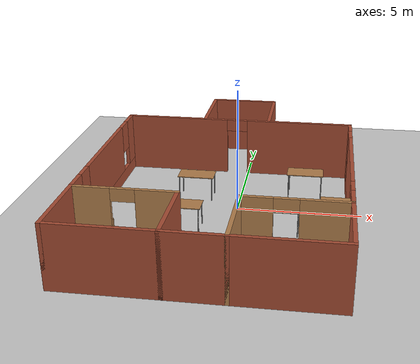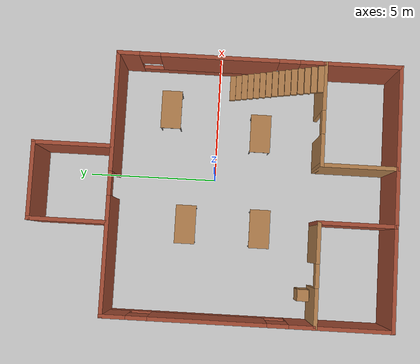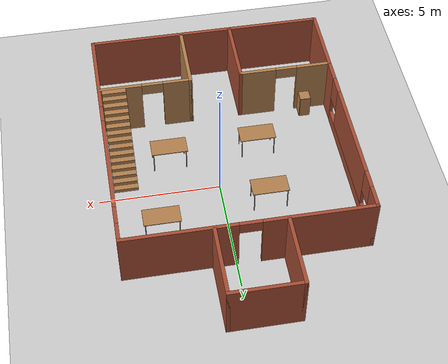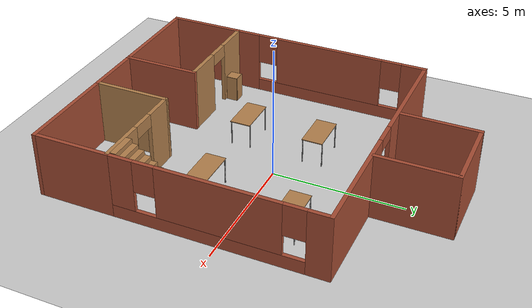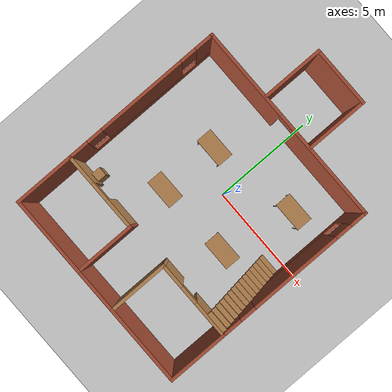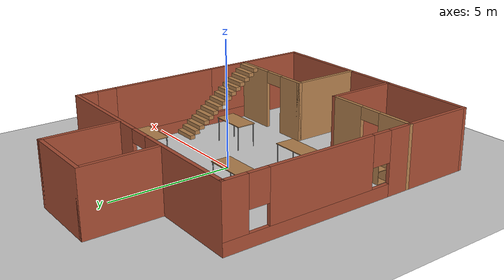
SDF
<sdf version="1.7">
 <world name="default">
  <light name="sun" type="directional">
   <pose>0 0 10 0 -0 0</pose>
   <diffuse>0.8 0.8 0.8 1</diffuse>
   <specular>0.2 0.2 0.2 1</specular>
   <attenuation>
    <range>1000</range>
    <constant>0.9</constant>
    <linear>0.01</linear>
    <quadratic>0.001</quadratic>
   </attenuation>
   <direction>-0.5 0.1 -0.9</direction>
   <spot><inner_angle>0</inner_angle><outer_angle>0</outer_angle><falloff>0</falloff></spot>
  </light>
  <model name="ground_plane">
   <static>1</static>
   <link name="link">
    <collision name="collision">
     <geometry><plane><normal>0 0 1</normal><size>100 100</size></plane></geometry>
     <surface><friction><ode><mu>100</mu><mu2>50</mu2></ode></friction></surface>
    </collision>
    <visual name="visual">
     <cast_shadows>0</cast_shadows>
     <geometry><plane><normal>0 0 1</normal><size>100 100</size></plane></geometry>
     <material>
      <script><uri>file://media/materials/scripts/gazebo.material</uri><name>Gazebo/Grey</name></script>
     </material>
    </visual>
   </link>
  </model>
  <gravity>0 0 -9.8</gravity>
  <magnetic_field>6e-06 2.3e-05 -4.2e-05</magnetic_field>
  <atmosphere type="adiabatic"/>
  <physics type="ode">
   <max_step_size>0.001</max_step_size>
   <real_time_factor>1</real_time_factor>
   <real_time_update_rate>1000</real_time_update_rate>
  </physics>
  <scene><ambient>0.4 0.4 0.4 1</ambient><background>0.7 0.7 0.7 1</background><shadows>1</shadows></scene>
  <audio><device>default</device></audio>
  <spherical_coordinates>
   <surface_model>EARTH_WGS84</surface_model>
   <latitude_deg>0</latitude_deg>
   <longitude_deg>0</longitude_deg>
   <elevation>0</elevation>
   <heading_deg>0</heading_deg>
  </spherical_coordinates>
  <model name="Restaurant">
   <pose>-0.018998 0.00633 0 0 -0 0</pose>
   <link name="Stairs_0">
    <visual name="Stairs_0_Visual_0">
     <pose>3.86151 -0.532842 0.083333 0 -0 0</pose>
     <geometry><box><size>1 0.233333 0.166667</size></box></geometry>
     <material>
      <script><uri>file://media/materials/scripts/gazebo.material</uri><name>Gazebo/Wood</name></script>
      <ambient>1 1 1 1</ambient>
     </material>
     <meta><layer>0</layer></meta>
    </visual>
    <collision name="Stairs_0_Collision_0">
     <geometry><box><size>1 0.233333 0.166667</size></box></geometry>
     <pose>3.86151 -0.532842 0.083333 0 -0 0</pose>
    </collision>
    <visual name="Stairs_0_Visual_1">
     <pose>3.86151 -0.766175 0.25 0 -0 0</pose>
     <geometry><box><size>1 0.233333 0.166667</size></box></geometry>
     <material>
      <script><uri>file://media/materials/scripts/gazebo.material</uri><name>Gazebo/Wood</name></script>
      <ambient>1 1 1 1</ambient>
     </material>
     <meta><layer>0</layer></meta>
    </visual>
    <collision name="Stairs_0_Collision_1">
     <geometry><box><size>1 0.233333 0.166667</size></box></geometry>
     <pose>3.86151 -0.766175 0.25 0 -0 0</pose>
    </collision>
    <visual name="Stairs_0_Visual_2">
     <pose>3.86151 -0.999508 0.416667 0 -0 0</pose>
     <geometry><box><size>1 0.233333 0.166667</size></box></geometry>
     <material>
      <script><uri>file://media/materials/scripts/gazebo.material</uri><name>Gazebo/Wood</name></script>
      <ambient>1 1 1 1</ambient>
     </material>
     <meta><layer>0</layer></meta>
    </visual>
    <collision name="Stairs_0_Collision_2">
     <geometry><box><size>1 0.233333 0.166667</size></box></geometry>
     <pose>3.86151 -0.999508 0.416667 0 -0 0</pose>
    </collision>
    <visual name="Stairs_0_Visual_3">
     <pose>3.86151 -1.23284 0.583333 0 -0 0</pose>
     <geometry><box><size>1 0.233333 0.166667</size></box></geometry>
     <material>
      <script><uri>file://media/materials/scripts/gazebo.material</uri><name>Gazebo/Wood</name></script>
      <ambient>1 1 1 1</ambient>
     </material>
     <meta><layer>0</layer></meta>
    </visual>
    <collision name="Stairs_0_Collision_3">
     <geometry><box><size>1 0.233333 0.166667</size></box></geometry>
     <pose>3.86151 -1.23284 0.583333 0 -0 0</pose>
    </collision>
    <visual name="Stairs_0_Visual_4">
     <pose>3.86151 -1.46618 0.75 0 -0 0</pose>
     <geometry><box><size>1 0.233333 0.166667</size></box></geometry>
     <material>
      <script><uri>file://media/materials/scripts/gazebo.material</uri><name>Gazebo/Wood</name></script>
      <ambient>1 1 1 1</ambient>
     </material>
     <meta><layer>0</layer></meta>
    </visual>
    <collision name="Stairs_0_Collision_4">
     <geometry><box><size>1 0.233333 0.166667</size></box></geometry>
     <pose>3.86151 -1.46618 0.75 0 -0 0</pose>
    </collision>
    <visual name="Stairs_0_Visual_5">
     <pose>3.86151 -1.69951 0.916667 0 -0 0</pose>
     <geometry><box><size>1 0.233333 0.166667</size></box></geometry>
     <material>
      <script><uri>file://media/materials/scripts/gazebo.material</uri><name>Gazebo/Wood</name></script>
      <ambient>1 1 1 1</ambient>
     </material>
     <meta><layer>0</layer></meta>
    </visual>
    <collision name="Stairs_0_Collision_5">
     <geometry><box><size>1 0.233333 0.166667</size></box></geometry>
     <pose>3.86151 -1.69951 0.916667 0 -0 0</pose>
    </collision>
    <visual name="Stairs_0_Visual_6">
     <pose>3.86151 -1.93284 1.08333 0 -0 0</pose>
     <geometry><box><size>1 0.233333 0.166667</size></box></geometry>
     <material>
      <script><uri>file://media/materials/scripts/gazebo.material</uri><name>Gazebo/Wood</name></script>
      <ambient>1 1 1 1</ambient>
     </material>
     <meta><layer>0</layer></meta>
    </visual>
    <collision name="Stairs_0_Collision_6">
     <geometry><box><size>1 0.233333 0.166667</size></box></geometry>
     <pose>3.86151 -1.93284 1.08333 0 -0 0</pose>
    </collision>
    <visual name="Stairs_0_Visual_7">
     <pose>3.86151 -2.16617 1.25 0 -0 0</pose>
     <geometry><box><size>1 0.233333 0.166667</size></box></geometry>
     <material>
      <script><uri>file://media/materials/scripts/gazebo.material</uri><name>Gazebo/Wood</name></script>
      <ambient>1 1 1 1</ambient>
     </material>
     <meta><layer>0</layer></meta>
    </visual>
    <collision name="Stairs_0_Collision_7">
     <geometry><box><size>1 0.233333 0.166667</size></box></geometry>
     <pose>3.86151 -2.16617 1.25 0 -0 0</pose>
    </collision>
    <visual name="Stairs_0_Visual_8">
     <pose>3.86151 -2.39951 1.41667 0 -0 0</pose>
     <geometry><box><size>1 0.233333 0.166667</size></box></geometry>
     <material>
      <script><uri>file://media/materials/scripts/gazebo.material</uri><name>Gazebo/Wood</name></script>
      <ambient>1 1 1 1</ambient>
     </material>
     <meta><layer>0</layer></meta>
    </visual>
    <collision name="Stairs_0_Collision_8">
     <geometry><box><size>1 0.233333 0.166667</size></box></geometry>
     <pose>3.86151 -2.39951 1.41667 0 -0 0</pose>
    </collision>
    <visual name="Stairs_0_Visual_9">
     <pose>3.86151 -2.63284 1.58333 0 -0 0</pose>
     <geometry><box><size>1 0.233333 0.166667</size></box></geometry>
     <material>
      <script><uri>file://media/materials/scripts/gazebo.material</uri><name>Gazebo/Wood</name></script>
      <ambient>1 1 1 1</ambient>
     </material>
     <meta><layer>0</layer></meta>
    </visual>
    <collision name="Stairs_0_Collision_9">
     <geometry><box><size>1 0.233333 0.166667</size></box></geometry>
     <pose>3.86151 -2.63284 1.58333 0 -0 0</pose>
    </collision>
    <visual name="Stairs_0_Visual_10">
     <pose>3.86151 -2.86618 1.75 0 -0 0</pose>
     <geometry><box><size>1 0.233333 0.166667</size></box></geometry>
     <material>
      <script><uri>file://media/materials/scripts/gazebo.material</uri><name>Gazebo/Wood</name></script>
      <ambient>1 1 1 1</ambient>
     </material>
     <meta><layer>0</layer></meta>
    </visual>
    <collision name="Stairs_0_Collision_10">
     <geometry><box><size>1 0.233333 0.166667</size></box></geometry>
     <pose>3.86151 -2.86618 1.75 0 -0 0</pose>
    </collision>
    <visual name="Stairs_0_Visual_11">
     <pose>3.86151 -3.09951 1.91667 0 -0 0</pose>
     <geometry><box><size>1 0.233333 0.166667</size></box></geometry>
     <material>
      <script><uri>file://media/materials/scripts/gazebo.material</uri><name>Gazebo/Wood</name></script>
      <ambient>1 1 1 1</ambient>
     </material>
     <meta><layer>0</layer></meta>
    </visual>
    <collision name="Stairs_0_Collision_11">
     <geometry><box><size>1 0.233333 0.166667</size></box></geometry>
     <pose>3.86151 -3.09951 1.91667 0 -0 0</pose>
    </collision>
    <visual name="Stairs_0_Visual_12">
     <pose>3.86151 -3.33284 2.08333 0 -0 0</pose>
     <geometry><box><size>1 0.233333 0.166667</size></box></geometry>
     <material>
      <script><uri>file://media/materials/scripts/gazebo.material</uri><name>Gazebo/Wood</name></script>
      <ambient>1 1 1 1</ambient>
     </material>
     <meta><layer>0</layer></meta>
    </visual>
    <collision name="Stairs_0_Collision_12">
     <geometry><box><size>1 0.233333 0.166667</size></box></geometry>
     <pose>3.86151 -3.33284 2.08333 0 -0 0</pose>
    </collision>
    <visual name="Stairs_0_Visual_13">
     <pose>3.86151 -3.56617 2.25 0 -0 0</pose>
     <geometry><box><size>1 0.233333 0.166667</size></box></geometry>
     <material>
      <script><uri>file://media/materials/scripts/gazebo.material</uri><name>Gazebo/Wood</name></script>
      <ambient>1 1 1 1</ambient>
     </material>
     <meta><layer>0</layer></meta>
    </visual>
    <collision name="Stairs_0_Collision_13">
     <geometry><box><size>1 0.233333 0.166667</size></box></geometry>
     <pose>3.86151 -3.56617 2.25 0 -0 0</pose>
    </collision>
    <visual name="Stairs_0_Visual_14">
     <pose>3.86151 -3.79951 2.41667 0 -0 0</pose>
     <geometry><box><size>1 0.233333 0.166667</size></box></geometry>
     <material>
      <script><uri>file://media/materials/scripts/gazebo.material</uri><name>Gazebo/Wood</name></script>
      <ambient>1 1 1 1</ambient>
     </material>
     <meta><layer>0</layer></meta>
    </visual>
    <collision name="Stairs_0_Collision_14">
     <geometry><box><size>1 0.233333 0.166667</size></box></geometry>
     <pose>3.86151 -3.79951 2.41667 0 -0 0</pose>
    </collision>
   </link>
   <link name="Wall_13">
    <collision name="Wall_13_Collision">
     <geometry><box><size>3 0.15 2.5</size></box></geometry>
     <pose>0 0 1.25 0 -0 0</pose>
    </collision>
    <visual name="Wall_13_Visual">
     <pose>0 0 1.25 0 -0 0</pose>
     <geometry><box><size>3 0.15 2.5</size></box></geometry>
     <material>
      <script><uri>file://media/materials/scripts/gazebo.material</uri><name>Gazebo/Bricks</name></script>
      <ambient>1 1 1 1</ambient>
     </material>
     <meta><layer>0</layer></meta>
    </visual>
    <pose>-1.95668 5.39616 0 0 -0 1.5708</pose>
   </link>
   <link name="Wall_14">
    <collision name="Wall_14_Collision">
     <geometry><box><size>3 0.15 2.5</size></box></geometry>
     <pose>0 0 1.25 0 -0 0</pose>
    </collision>
    <visual name="Wall_14_Visual">
     <pose>0 0 1.25 0 -0 0</pose>
     <geometry><box><size>3 0.15 2.5</size></box></geometry>
     <material>
      <script><uri>file://media/materials/scripts/gazebo.material</uri><name>Gazebo/Bricks</name></script>
      <ambient>1 1 1 1</ambient>
     </material>
     <meta><layer>0</layer></meta>
    </visual>
    <pose>-0.531677 6.82116 0 0 -0 0</pose>
   </link>
   <link name="Wall_15">
    <collision name="Wall_15_Collision">
     <geometry><box><size>3 0.15 2.5</size></box></geometry>
     <pose>0 0 1.25 0 -0 0</pose>
    </collision>
    <visual name="Wall_15_Visual">
     <pose>0 0 1.25 0 -0 0</pose>
     <geometry><box><size>3 0.15 2.5</size></box></geometry>
     <material>
      <script><uri>file://media/materials/scripts/gazebo.material</uri><name>Gazebo/Bricks</name></script>
      <ambient>1 1 1 1</ambient>
     </material>
     <meta><layer>0</layer></meta>
    </visual>
    <pose>0.893323 5.39616 0 0 -0 -1.5708</pose>
   </link>
   <link name="Wall_17">
    <collision name="Wall_17_Collision">
     <geometry><box><size>3 0.15 2.5</size></box></geometry>
     <pose>0 0 1.25 0 -0 0</pose>
    </collision>
    <visual name="Wall_17_Visual">
     <pose>0 0 1.25 0 -0 0</pose>
     <geometry><box><size>3 0.15 2.5</size></box></geometry>
     <material>
      <script><uri>file://media/materials/scripts/gazebo.material</uri><name>Gazebo/Bricks</name></script>
      <ambient>1 1 1 1</ambient>
     </material>
     <meta><layer>0</layer></meta>
    </visual>
    <pose>-5.38246 -5.39616 0 0 -0 -1.5708</pose>
   </link>
   <link name="Wall_18">
    <collision name="Wall_18_Collision">
     <geometry><box><size>4 0.15 2.5</size></box></geometry>
     <pose>0 0 1.25 0 -0 0</pose>
    </collision>
    <visual name="Wall_18_Visual">
     <pose>0 0 1.25 0 -0 0</pose>
     <geometry><box><size>4 0.15 2.5</size></box></geometry>
     <material>
      <script><uri>file://media/materials/scripts/gazebo.material</uri><name>Gazebo/Bricks</name></script>
      <ambient>1 1 1 1</ambient>
     </material>
     <meta><layer>0</layer></meta>
    </visual>
    <pose>-3.45747 -6.82116 0 0 -0 0</pose>
   </link>
   <link name="Wall_19">
    <collision name="Wall_19_Collision">
     <geometry><box><size>3 0.15 2.5</size></box></geometry>
     <pose>0 0 1.25 0 -0 0</pose>
    </collision>
    <visual name="Wall_19_Visual">
     <pose>0 0 1.25 0 -0 0</pose>
     <geometry><box><size>3 0.15 2.5</size></box></geometry>
     <material>
      <script><uri>file://media/materials/scripts/gazebo.material</uri><name>Gazebo/Bricks</name></script>
      <ambient>1 1 1 1</ambient>
     </material>
     <meta><layer>0</layer></meta>
    </visual>
    <pose>-1.53246 -5.39616 0 0 -0 1.5708</pose>
   </link>
   <link name="Wall_25">
    <collision name="Wall_25_Collision">
     <geometry><box><size>3 0.15 2.5</size></box></geometry>
     <pose>0 0 1.25 0 -0 0</pose>
    </collision>
    <visual name="Wall_25_Visual">
     <pose>0 0 1.25 0 -0 0</pose>
     <geometry><box><size>3 0.15 2.5</size></box></geometry>
     <material>
      <script><uri>file://media/materials/scripts/gazebo.material</uri><name>Gazebo/Bricks</name></script>
      <ambient>1 1 1 1</ambient>
     </material>
     <meta><layer>0</layer></meta>
    </visual>
    <pose>4.46753 -5.39616 0 0 -0 -1.5708</pose>
   </link>
   <link name="Wall_26">
    <collision name="Wall_26_Collision">
     <geometry><box><size>4 0.15 2.5</size></box></geometry>
     <pose>0 0 1.25 0 -0 0</pose>
    </collision>
    <visual name="Wall_26_Visual">
     <pose>0 0 1.25 0 -0 0</pose>
     <geometry><box><size>4 0.15 2.5</size></box></geometry>
     <material>
      <script><uri>file://media/materials/scripts/gazebo.material</uri><name>Gazebo/Bricks</name></script>
      <ambient>1 1 1 1</ambient>
     </material>
     <meta><layer>0</layer></meta>
    </visual>
    <pose>2.54253 -6.82116 0 0 -0 3.14159</pose>
   </link>
   <link name="Wall_27">
    <collision name="Wall_27_Collision">
     <geometry><box><size>3 0.15 2.5</size></box></geometry>
     <pose>0 0 1.25 0 -0 0</pose>
    </collision>
    <visual name="Wall_27_Visual">
     <pose>0 0 1.25 0 -0 0</pose>
     <geometry><box><size>3 0.15 2.5</size></box></geometry>
     <material>
      <script><uri>file://media/materials/scripts/gazebo.material</uri><name>Gazebo/Wood</name></script>
      <ambient>1 1 1 1</ambient>
     </material>
     <meta><layer>0</layer></meta>
    </visual>
    <pose>0.617535 -5.39616 0 0 -0 1.5708</pose>
   </link>
   <link name="Wall_32">
    <pose>-3.45747 -3.97116 0 0 -0 3.14159</pose>
    <visual name="Wall_32_Visual_0">
     <pose>-1.20352 0 1.25 0 -0 0</pose>
     <geometry><box><size>1.59296 0.15 2.5</size></box></geometry>
     <material>
      <script><uri>file://media/materials/scripts/gazebo.material</uri><name>Gazebo/Wood</name></script>
      <ambient>1 1 1 1</ambient>
     </material>
     <meta><layer>0</layer></meta>
    </visual>
    <collision name="Wall_32_Collision_0">
     <geometry><box><size>1.59296 0.15 2.5</size></box></geometry>
     <pose>-1.20352 0 1.25 0 -0 0</pose>
    </collision>
    <visual name="Wall_32_Visual_1">
     <pose>1.24648 0 1.25 0 -0 0</pose>
     <geometry><box><size>1.50704 0.15 2.5</size></box></geometry>
     <material>
      <script><uri>file://media/materials/scripts/gazebo.material</uri><name>Gazebo/Wood</name></script>
      <ambient>1 1 1 1</ambient>
     </material>
     <meta><layer>0</layer></meta>
    </visual>
    <collision name="Wall_32_Collision_1">
     <geometry><box><size>1.50704 0.15 2.5</size></box></geometry>
     <pose>1.24648 0 1.25 0 -0 0</pose>
    </collision>
    <visual name="Wall_32_Visual_2">
     <pose>0.04296 0 2.25 0 -0 0</pose>
     <geometry><box><size>0.9 0.15 0.5</size></box></geometry>
     <material>
      <script><uri>file://media/materials/scripts/gazebo.material</uri><name>Gazebo/Wood</name></script>
      <ambient>1 1 1 1</ambient>
     </material>
     <meta><layer>0</layer></meta>
    </visual>
    <collision name="Wall_32_Collision_2">
     <geometry><box><size>0.9 0.15 0.5</size></box></geometry>
     <pose>0.04296 0 2.25 0 -0 0</pose>
    </collision>
   </link>
   <link name="Wall_34">
    <pose>2.54253 -3.97116 0 0 -0 0</pose>
    <visual name="Wall_34_Visual_0">
     <pose>-1.37963 0 1.25 0 -0 0</pose>
     <geometry><box><size>1.24074 0.15 2.5</size></box></geometry>
     <material>
      <script><uri>file://media/materials/scripts/gazebo.material</uri><name>Gazebo/Wood</name></script>
      <ambient>1 1 1 1</ambient>
     </material>
     <meta><layer>0</layer></meta>
    </visual>
    <collision name="Wall_34_Collision_0">
     <geometry><box><size>1.24074 0.15 2.5</size></box></geometry>
     <pose>-1.37963 0 1.25 0 -0 0</pose>
    </collision>
    <visual name="Wall_34_Visual_1">
     <pose>1.07037 0 1.25 0 -0 0</pose>
     <geometry><box><size>1.85926 0.15 2.5</size></box></geometry>
     <material>
      <script><uri>file://media/materials/scripts/gazebo.material</uri><name>Gazebo/Wood</name></script>
      <ambient>1 1 1 1</ambient>
     </material>
     <meta><layer>0</layer></meta>
    </visual>
    <collision name="Wall_34_Collision_1">
     <geometry><box><size>1.85926 0.15 2.5</size></box></geometry>
     <pose>1.07037 0 1.25 0 -0 0</pose>
    </collision>
    <visual name="Wall_34_Visual_2">
     <pose>-0.309262 0 2.25 0 -0 0</pose>
     <geometry><box><size>0.9 0.15 0.5</size></box></geometry>
     <material>
      <script><uri>file://media/materials/scripts/gazebo.material</uri><name>Gazebo/Wood</name></script>
      <ambient>1 1 1 1</ambient>
     </material>
     <meta><layer>0</layer></meta>
    </visual>
    <collision name="Wall_34_Collision_2">
     <geometry><box><size>0.9 0.15 0.5</size></box></geometry>
     <pose>-0.309262 0 2.25 0 -0 0</pose>
    </collision>
   </link>
   <link name="Wall_36">
    <collision name="Wall_36_Collision">
     <geometry><box><size>2.3 0.15 2.5</size></box></geometry>
     <pose>0 0 1.25 0 -0 0</pose>
    </collision>
    <visual name="Wall_36_Visual">
     <pose>0 0 1.25 0 -0 0</pose>
     <geometry><box><size>2.3 0.15 2.5</size></box></geometry>
     <material>
      <script><uri>file://media/materials/scripts/gazebo.material</uri><name>Gazebo/Bricks</name></script>
      <ambient>1 1 1 1</ambient>
     </material>
     <meta><layer>0</layer></meta>
    </visual>
    <pose>-0.457465 -6.82116 0 0 -0 0</pose>
   </link>
   <link name="Wall_6">
    <pose>-0.457465 3.87884 0 0 -0 0</pose>
    <visual name="Wall_6_Visual_0">
     <pose>-2.7455 0 1.25 0 -0 0</pose>
     <geometry><box><size>4.50901 0.15 2.5</size></box></geometry>
     <material>
      <script><uri>file://media/materials/scripts/gazebo.material</uri><name>Gazebo/Bricks</name></script>
      <ambient>1 1 1 1</ambient>
     </material>
     <meta><layer>0</layer></meta>
    </visual>
    <collision name="Wall_6_Collision_0">
     <geometry><box><size>4.50901 0.15 2.5</size></box></geometry>
     <pose>-2.7455 0 1.25 0 -0 0</pose>
    </collision>
    <visual name="Wall_6_Visual_1">
     <pose>2.70451 0 1.25 0 -0 0</pose>
     <geometry><box><size>4.59099 0.15 2.5</size></box></geometry>
     <material>
      <script><uri>file://media/materials/scripts/gazebo.material</uri><name>Gazebo/Bricks</name></script>
      <ambient>1 1 1 1</ambient>
     </material>
     <meta><layer>0</layer></meta>
    </visual>
    <collision name="Wall_6_Collision_1">
     <geometry><box><size>4.59099 0.15 2.5</size></box></geometry>
     <pose>2.70451 0 1.25 0 -0 0</pose>
    </collision>
    <visual name="Wall_6_Visual_2">
     <pose>-0.040989 0 2.25 0 -0 0</pose>
     <geometry><box><size>0.9 0.15 0.5</size></box></geometry>
     <material>
      <script><uri>file://media/materials/scripts/gazebo.material</uri><name>Gazebo/Bricks</name></script>
      <ambient>1 1 1 1</ambient>
     </material>
     <meta><layer>0</layer></meta>
    </visual>
    <collision name="Wall_6_Collision_2">
     <geometry><box><size>0.9 0.15 0.5</size></box></geometry>
     <pose>-0.040989 0 2.25 0 -0 0</pose>
    </collision>
   </link>
   <link name="Wall_7">
    <pose>4.46753 -0.046164 0 0 -0 -1.5708</pose>
    <visual name="Wall_7_Visual_0">
     <pose>-3.56684 0 1.25 0 -0 0</pose>
     <geometry><box><size>0.866315 0.15 2.5</size></box></geometry>
     <material>
      <script><uri>file://media/materials/scripts/gazebo.material</uri><name>Gazebo/Bricks</name></script>
      <ambient>1 1 1 1</ambient>
     </material>
     <meta><layer>0</layer></meta>
    </visual>
    <collision name="Wall_7_Collision_0">
     <geometry><box><size>0.866315 0.15 2.5</size></box></geometry>
     <pose>-3.56684 0 1.25 0 -0 0</pose>
    </collision>
    <visual name="Wall_7_Visual_1">
     <pose>0.433158 0 0.25 0 -0 0</pose>
     <geometry><box><size>7.13368 0.15 0.5</size></box></geometry>
     <material>
      <script><uri>file://media/materials/scripts/gazebo.material</uri><name>Gazebo/Bricks</name></script>
      <ambient>1 1 1 1</ambient>
     </material>
     <meta><layer>0</layer></meta>
    </visual>
    <collision name="Wall_7_Collision_1">
     <geometry><box><size>7.13368 0.15 0.5</size></box></geometry>
     <pose>0.433158 0 0.25 0 -0 0</pose>
    </collision>
    <visual name="Wall_7_Visual_2">
     <pose>-0.08763 0 1.5 0 -0 0</pose>
     <geometry><box><size>4.49211 0.15 2</size></box></geometry>
     <material>
      <script><uri>file://media/materials/scripts/gazebo.material</uri><name>Gazebo/Bricks</name></script>
      <ambient>1 1 1 1</ambient>
     </material>
     <meta><layer>0</layer></meta>
    </visual>
    <collision name="Wall_7_Collision_2">
     <geometry><box><size>4.49211 0.15 2</size></box></geometry>
     <pose>-0.08763 0 1.5 0 -0 0</pose>
    </collision>
    <visual name="Wall_7_Visual_3">
     <pose>3.47921 0 1.5 0 -0 0</pose>
     <geometry><box><size>1.04157 0.15 2</size></box></geometry>
     <material>
      <script><uri>file://media/materials/scripts/gazebo.material</uri><name>Gazebo/Bricks</name></script>
      <ambient>1 1 1 1</ambient>
     </material>
     <meta><layer>0</layer></meta>
    </visual>
    <collision name="Wall_7_Collision_3">
     <geometry><box><size>1.04157 0.15 2</size></box></geometry>
     <pose>3.47921 0 1.5 0 -0 0</pose>
    </collision>
    <visual name="Wall_7_Visual_4">
     <pose>-2.73368 0 1.9 0 -0 0</pose>
     <geometry><box><size>0.8 0.15 1.2</size></box></geometry>
     <material>
      <script><uri>file://media/materials/scripts/gazebo.material</uri><name>Gazebo/Bricks</name></script>
      <ambient>1 1 1 1</ambient>
     </material>
     <meta><layer>0</layer></meta>
    </visual>
    <collision name="Wall_7_Collision_4">
     <geometry><box><size>0.8 0.15 1.2</size></box></geometry>
     <pose>-2.73368 0 1.9 0 -0 0</pose>
    </collision>
    <visual name="Wall_7_Visual_5">
     <pose>2.55843 0 1.9 0 -0 0</pose>
     <geometry><box><size>0.8 0.15 1.2</size></box></geometry>
     <material>
      <script><uri>file://media/materials/scripts/gazebo.material</uri><name>Gazebo/Bricks</name></script>
      <ambient>1 1 1 1</ambient>
     </material>
     <meta><layer>0</layer></meta>
    </visual>
    <collision name="Wall_7_Collision_5">
     <geometry><box><size>0.8 0.15 1.2</size></box></geometry>
     <pose>2.55843 0 1.9 0 -0 0</pose>
    </collision>
   </link>
   <link name="Wall_9">
    <pose>-5.38246 -0.046164 0 0 -0 1.5708</pose>
    <visual name="Wall_9_Visual_0">
     <pose>-3.47921 0 1.25 0 -0 0</pose>
     <geometry><box><size>1.04157 0.15 2.5</size></box></geometry>
     <material>
      <script><uri>file://media/materials/scripts/gazebo.material</uri><name>Gazebo/Bricks</name></script>
      <ambient>1 1 1 1</ambient>
     </material>
     <meta><layer>0</layer></meta>
    </visual>
    <collision name="Wall_9_Collision_0">
     <geometry><box><size>1.04157 0.15 2.5</size></box></geometry>
     <pose>-3.47921 0 1.25 0 -0 0</pose>
    </collision>
    <visual name="Wall_9_Visual_1">
     <pose>0.520788 0 0.25 0 -0 0</pose>
     <geometry><box><size>6.95843 0.15 0.5</size></box></geometry>
     <material>
      <script><uri>file://media/materials/scripts/gazebo.material</uri><name>Gazebo/Bricks</name></script>
      <ambient>1 1 1 1</ambient>
     </material>
     <meta><layer>0</layer></meta>
    </visual>
    <collision name="Wall_9_Collision_1">
     <geometry><box><size>6.95843 0.15 0.5</size></box></geometry>
     <pose>0.520788 0 0.25 0 -0 0</pose>
    </collision>
    <visual name="Wall_9_Visual_2">
     <pose>0.026449 0 1.5 0 -0 0</pose>
     <geometry><box><size>4.36975 0.15 2</size></box></geometry>
     <material>
      <script><uri>file://media/materials/scripts/gazebo.material</uri><name>Gazebo/Bricks</name></script>
      <ambient>1 1 1 1</ambient>
     </material>
     <meta><layer>0</layer></meta>
    </visual>
    <collision name="Wall_9_Collision_2">
     <geometry><box><size>4.36975 0.15 2</size></box></geometry>
     <pose>0.026449 0 1.5 0 -0 0</pose>
    </collision>
    <visual name="Wall_9_Visual_3">
     <pose>3.50566 0 1.5 0 -0 0</pose>
     <geometry><box><size>0.988676 0.15 2</size></box></geometry>
     <material>
      <script><uri>file://media/materials/scripts/gazebo.material</uri><name>Gazebo/Bricks</name></script>
      <ambient>1 1 1 1</ambient>
     </material>
     <meta><layer>0</layer></meta>
    </visual>
    <collision name="Wall_9_Collision_3">
     <geometry><box><size>0.988676 0.15 2</size></box></geometry>
     <pose>3.50566 0 1.5 0 -0 0</pose>
    </collision>
    <visual name="Wall_9_Visual_4">
     <pose>-2.55843 0 1.9 0 -0 0</pose>
     <geometry><box><size>0.8 0.15 1.2</size></box></geometry>
     <material>
      <script><uri>file://media/materials/scripts/gazebo.material</uri><name>Gazebo/Bricks</name></script>
      <ambient>1 1 1 1</ambient>
     </material>
     <meta><layer>0</layer></meta>
    </visual>
    <collision name="Wall_9_Collision_4">
     <geometry><box><size>0.8 0.15 1.2</size></box></geometry>
     <pose>-2.55843 0 1.9 0 -0 0</pose>
    </collision>
    <visual name="Wall_9_Visual_5">
     <pose>2.61132 0 1.9 0 -0 0</pose>
     <geometry><box><size>0.8 0.15 1.2</size></box></geometry>
     <material>
      <script><uri>file://media/materials/scripts/gazebo.material</uri><name>Gazebo/Bricks</name></script>
      <ambient>1 1 1 1</ambient>
     </material>
     <meta><layer>0</layer></meta>
    </visual>
    <collision name="Wall_9_Collision_5">
     <geometry><box><size>0.8 0.15 1.2</size></box></geometry>
     <pose>2.61132 0 1.9 0 -0 0</pose>
    </collision>
   </link>
   <static>1</static>
  </model>
  <model name="table">
   <static>1</static>
   <link name="link">
    <collision name="surface">
     <pose>0 0 1 0 -0 0</pose>
     <geometry><box><size>1.5 0.8 0.03</size></box></geometry>
     <surface><friction><ode><mu>0.6</mu><mu2>0.6</mu2></ode></friction></surface>
    </collision>
    <visual name="visual1">
     <pose>0 0 1 0 -0 0</pose>
     <geometry><box><size>1.5 0.8 0.03</size></box></geometry>
     <material>
      <script><uri>file://media/materials/scripts/gazebo.material</uri><name>Gazebo/Wood</name></script>
     </material>
    </visual>
    <collision name="front_left_leg">
     <pose>0.68 0.38 0.5 0 -0 0</pose>
     <geometry><cylinder><radius>0.02</radius><length>1</length></cylinder></geometry>
    </collision>
    <visual name="front_left_leg">
     <pose>0.68 0.38 0.5 0 -0 0</pose>
     <geometry><cylinder><radius>0.02</radius><length>1</length></cylinder></geometry>
     <material>
      <script><uri>file://media/materials/scripts/gazebo.material</uri><name>Gazebo/Grey</name></script>
     </material>
    </visual>
    <collision name="front_right_leg">
     <pose>0.68 -0.38 0.5 0 -0 0</pose>
     <geometry><cylinder><radius>0.02</radius><length>1</length></cylinder></geometry>
    </collision>
    <visual name="front_right_leg">
     <pose>0.68 -0.38 0.5 0 -0 0</pose>
     <geometry><cylinder><radius>0.02</radius><length>1</length></cylinder></geometry>
     <material>
      <script><uri>file://media/materials/scripts/gazebo.material</uri><name>Gazebo/Grey</name></script>
     </material>
    </visual>
    <collision name="back_right_leg">
     <pose>-0.68 -0.38 0.5 0 -0 0</pose>
     <geometry><cylinder><radius>0.02</radius><length>1</length></cylinder></geometry>
    </collision>
    <visual name="back_right_leg">
     <pose>-0.68 -0.38 0.5 0 -0 0</pose>
     <geometry><cylinder><radius>0.02</radius><length>1</length></cylinder></geometry>
     <material>
      <script><uri>file://media/materials/scripts/gazebo.material</uri><name>Gazebo/Grey</name></script>
     </material>
    </visual>
    <collision name="back_left_leg">
     <pose>-0.68 0.38 0.5 0 -0 0</pose>
     <geometry><cylinder><radius>0.02</radius><length>1</length></cylinder></geometry>
    </collision>
    <visual name="back_left_leg">
     <pose>-0.68 0.38 0.5 0 -0 0</pose>
     <geometry><cylinder><radius>0.02</radius><length>1</length></cylinder></geometry>
     <material>
      <script><uri>file://media/materials/scripts/gazebo.material</uri><name>Gazebo/Grey</name></script>
     </material>
    </visual>
   </link>
   <pose>-1.87456 -1.84638 0 0 -0 0</pose>
  </model>
  <model name="table_0">
   <static>1</static>
   <link name="link">
    <collision name="surface">
     <pose>0 0 1 0 -0 0</pose>
     <geometry><box><size>1.5 0.8 0.03</size></box></geometry>
     <surface><friction><ode><mu>0.6</mu><mu2>0.6</mu2></ode></friction></surface>
    </collision>
    <visual name="visual1">
     <pose>0 0 1 0 -0 0</pose>
     <geometry><box><size>1.5 0.8 0.03</size></box></geometry>
     <material>
      <script><uri>file://media/materials/scripts/gazebo.material</uri><name>Gazebo/Wood</name></script>
     </material>
    </visual>
    <collision name="front_left_leg">
     <pose>0.68 0.38 0.5 0 -0 0</pose>
     <geometry><cylinder><radius>0.02</radius><length>1</length></cylinder></geometry>
    </collision>
    <visual name="front_left_leg">
     <pose>0.68 0.38 0.5 0 -0 0</pose>
     <geometry><cylinder><radius>0.02</radius><length>1</length></cylinder></geometry>
     <material>
      <script><uri>file://media/materials/scripts/gazebo.material</uri><name>Gazebo/Grey</name></script>
     </material>
    </visual>
    <collision name="front_right_leg">
     <pose>0.68 -0.38 0.5 0 -0 0</pose>
     <geometry><cylinder><radius>0.02</radius><length>1</length></cylinder></geometry>
    </collision>
    <visual name="front_right_leg">
     <pose>0.68 -0.38 0.5 0 -0 0</pose>
     <geometry><cylinder><radius>0.02</radius><length>1</length></cylinder></geometry>
     <material>
      <script><uri>file://media/materials/scripts/gazebo.material</uri><name>Gazebo/Grey</name></script>
     </material>
    </visual>
    <collision name="back_right_leg">
     <pose>-0.68 -0.38 0.5 0 -0 0</pose>
     <geometry><cylinder><radius>0.02</radius><length>1</length></cylinder></geometry>
    </collision>
    <visual name="back_right_leg">
     <pose>-0.68 -0.38 0.5 0 -0 0</pose>
     <geometry><cylinder><radius>0.02</radius><length>1</length></cylinder></geometry>
     <material>
      <script><uri>file://media/materials/scripts/gazebo.material</uri><name>Gazebo/Grey</name></script>
     </material>
    </visual>
    <collision name="back_left_leg">
     <pose>-0.68 0.38 0.5 0 -0 0</pose>
     <geometry><cylinder><radius>0.02</radius><length>1</length></cylinder></geometry>
    </collision>
    <visual name="back_left_leg">
     <pose>-0.68 0.38 0.5 0 -0 0</pose>
     <geometry><cylinder><radius>0.02</radius><length>1</length></cylinder></geometry>
     <material>
      <script><uri>file://media/materials/scripts/gazebo.material</uri><name>Gazebo/Grey</name></script>
     </material>
    </visual>
   </link>
   <pose>-1.84743 1.05169 0 0 -0 0</pose>
  </model>
  <model name="table_1">
   <static>1</static>
   <link name="link">
    <collision name="surface">
     <pose>0 0 1 0 -0 0</pose>
     <geometry><box><size>1.5 0.8 0.03</size></box></geometry>
     <surface><friction><ode><mu>0.6</mu><mu2>0.6</mu2></ode></friction></surface>
    </collision>
    <visual name="visual1">
     <pose>0 0 1 0 -0 0</pose>
     <geometry><box><size>1.5 0.8 0.03</size></box></geometry>
     <material>
      <script><uri>file://media/materials/scripts/gazebo.material</uri><name>Gazebo/Wood</name></script>
     </material>
    </visual>
    <collision name="front_left_leg">
     <pose>0.68 0.38 0.5 0 -0 0</pose>
     <geometry><cylinder><radius>0.02</radius><length>1</length></cylinder></geometry>
    </collision>
    <visual name="front_left_leg">
     <pose>0.68 0.38 0.5 0 -0 0</pose>
     <geometry><cylinder><radius>0.02</radius><length>1</length></cylinder></geometry>
     <material>
      <script><uri>file://media/materials/scripts/gazebo.material</uri><name>Gazebo/Grey</name></script>
     </material>
    </visual>
    <collision name="front_right_leg">
     <pose>0.68 -0.38 0.5 0 -0 0</pose>
     <geometry><cylinder><radius>0.02</radius><length>1</length></cylinder></geometry>
    </collision>
    <visual name="front_right_leg">
     <pose>0.68 -0.38 0.5 0 -0 0</pose>
     <geometry><cylinder><radius>0.02</radius><length>1</length></cylinder></geometry>
     <material>
      <script><uri>file://media/materials/scripts/gazebo.material</uri><name>Gazebo/Grey</name></script>
     </material>
    </visual>
    <collision name="back_right_leg">
     <pose>-0.68 -0.38 0.5 0 -0 0</pose>
     <geometry><cylinder><radius>0.02</radius><length>1</length></cylinder></geometry>
    </collision>
    <visual name="back_right_leg">
     <pose>-0.68 -0.38 0.5 0 -0 0</pose>
     <geometry><cylinder><radius>0.02</radius><length>1</length></cylinder></geometry>
     <material>
      <script><uri>file://media/materials/scripts/gazebo.material</uri><name>Gazebo/Grey</name></script>
     </material>
    </visual>
    <collision name="back_left_leg">
     <pose>-0.68 0.38 0.5 0 -0 0</pose>
     <geometry><cylinder><radius>0.02</radius><length>1</length></cylinder></geometry>
    </collision>
    <visual name="back_left_leg">
     <pose>-0.68 0.38 0.5 0 -0 0</pose>
     <geometry><cylinder><radius>0.02</radius><length>1</length></cylinder></geometry>
     <material>
      <script><uri>file://media/materials/scripts/gazebo.material</uri><name>Gazebo/Grey</name></script>
     </material>
    </visual>
   </link>
   <pose>1.87891 -1.70103 0 0 -0 0</pose>
  </model>
  <model name="table_2">
   <static>1</static>
   <link name="link">
    <collision name="surface">
     <pose>0 0 1 0 -0 0</pose>
     <geometry><box><size>1.5 0.8 0.03</size></box></geometry>
     <surface><friction><ode><mu>0.6</mu><mu2>0.6</mu2></ode></friction></surface>
    </collision>
    <visual name="visual1">
     <pose>0 0 1 0 -0 0</pose>
     <geometry><box><size>1.5 0.8 0.03</size></box></geometry>
     <material>
      <script><uri>file://media/materials/scripts/gazebo.material</uri><name>Gazebo/Wood</name></script>
     </material>
    </visual>
    <collision name="front_left_leg">
     <pose>0.68 0.38 0.5 0 -0 0</pose>
     <geometry><cylinder><radius>0.02</radius><length>1</length></cylinder></geometry>
    </collision>
    <visual name="front_left_leg">
     <pose>0.68 0.38 0.5 0 -0 0</pose>
     <geometry><cylinder><radius>0.02</radius><length>1</length></cylinder></geometry>
     <material>
      <script><uri>file://media/materials/scripts/gazebo.material</uri><name>Gazebo/Grey</name></script>
     </material>
    </visual>
    <collision name="front_right_leg">
     <pose>0.68 -0.38 0.5 0 -0 0</pose>
     <geometry><cylinder><radius>0.02</radius><length>1</length></cylinder></geometry>
    </collision>
    <visual name="front_right_leg">
     <pose>0.68 -0.38 0.5 0 -0 0</pose>
     <geometry><cylinder><radius>0.02</radius><length>1</length></cylinder></geometry>
     <material>
      <script><uri>file://media/materials/scripts/gazebo.material</uri><name>Gazebo/Grey</name></script>
     </material>
    </visual>
    <collision name="back_right_leg">
     <pose>-0.68 -0.38 0.5 0 -0 0</pose>
     <geometry><cylinder><radius>0.02</radius><length>1</length></cylinder></geometry>
    </collision>
    <visual name="back_right_leg">
     <pose>-0.68 -0.38 0.5 0 -0 0</pose>
     <geometry><cylinder><radius>0.02</radius><length>1</length></cylinder></geometry>
     <material>
      <script><uri>file://media/materials/scripts/gazebo.material</uri><name>Gazebo/Grey</name></script>
     </material>
    </visual>
    <collision name="back_left_leg">
     <pose>-0.68 0.38 0.5 0 -0 0</pose>
     <geometry><cylinder><radius>0.02</radius><length>1</length></cylinder></geometry>
    </collision>
    <visual name="back_left_leg">
     <pose>-0.68 0.38 0.5 0 -0 0</pose>
     <geometry><cylinder><radius>0.02</radius><length>1</length></cylinder></geometry>
     <material>
      <script><uri>file://media/materials/scripts/gazebo.material</uri><name>Gazebo/Grey</name></script>
     </material>
    </visual>
   </link>
   <pose>2.6509 1.8605 0 0 -0 0</pose>
  </model>
  <model name="cabinet">
   <static>1</static>
   <link name="cabinet_bottom_plate">
    <inertial>
     <pose>0 0 -1 0 -0 0</pose>
     <inertia><ixx>2.05</ixx><ixy>0</ixy><ixz>0</ixz><iyy>2.05</iyy><iyz>0</iyz><izz>2.05</izz></inertia>
     <mass>25</mass>
    </inertial>
    <collision name="cabinet_bottom_plate_geom">
     <pose>0 0 0.01 0 -0 0</pose>
     <geometry><box><size>0.45 0.45 0.02</size></box></geometry>
    </collision>
    <visual name="cabinet_bottom_plate_geom_visual">
     <pose>0 0 0.01 0 -0 0</pose>
     <geometry><box><size>0.45 0.45 0.02</size></box></geometry>
     <material>
      <script><uri>file://media/materials/scripts/gazebo.material</uri><name>Gazebo/Wood</name></script>
     </material>
    </visual>
    <collision name="cabinet_bottom_plate_geom_cabinet_back_plate">
     <pose>0.235 0 0.51 0 -0 0</pose>
     <geometry><box><size>0.02 0.45 1.02</size></box></geometry>
    </collision>
    <visual name="cabinet_bottom_plate_geom_cabinet_back_plate_visual">
     <pose>0.235 0 0.51 0 -0 0</pose>
     <geometry><box><size>0.02 0.45 1.02</size></box></geometry>
     <material>
      <script><uri>file://media/materials/scripts/gazebo.material</uri><name>Gazebo/Wood</name></script>
     </material>
    </visual>
    <collision name="cabinet_bottom_plate_geom_cabinet_left_plate">
     <pose>0 0.235 0.51 0 -0 0</pose>
     <geometry><box><size>0.45 0.02 1.02</size></box></geometry>
    </collision>
    <visual name="cabinet_bottom_plate_geom_cabinet_left_plate_visual">
     <pose>0 0.235 0.51 0 -0 0</pose>
     <geometry><box><size>0.45 0.02 1.02</size></box></geometry>
     <material>
      <script><uri>file://media/materials/scripts/gazebo.material</uri><name>Gazebo/Wood</name></script>
     </material>
    </visual>
    <collision name="cabinet_bottom_plate_geom_cabinet_middle_plate">
     <pose>0 0 0.51 0 -0 0</pose>
     <geometry><box><size>0.45 0.45 0.02</size></box></geometry>
    </collision>
    <visual name="cabinet_bottom_plate_geom_cabinet_middle_plate_visual">
     <pose>0 0 0.51 0 -0 0</pose>
     <geometry><box><size>0.45 0.45 0.02</size></box></geometry>
     <material>
      <script><uri>file://media/materials/scripts/gazebo.material</uri><name>Gazebo/Wood</name></script>
     </material>
    </visual>
    <collision name="cabinet_bottom_plate_geom_cabinet_right_plate">
     <pose>0 -0.235 0.51 0 -0 0</pose>
     <geometry><box><size>0.45 0.02 1.02</size></box></geometry>
    </collision>
    <visual name="cabinet_bottom_plate_geom_cabinet_right_plate_visual">
     <pose>0 -0.235 0.51 0 -0 0</pose>
     <geometry><box><size>0.45 0.02 1.02</size></box></geometry>
     <material>
      <script><uri>file://media/materials/scripts/gazebo.material</uri><name>Gazebo/Wood</name></script>
     </material>
    </visual>
    <collision name="cabinet_bottom_plate_geom_cabinet_top_plate">
     <pose>0 0 1.01 0 -0 0</pose>
     <geometry><box><size>0.45 0.45 0.02</size></box></geometry>
    </collision>
    <visual name="cabinet_bottom_plate_geom_cabinet_top_plate_visual">
     <pose>0 0 1.01 0 -0 0</pose>
     <geometry><box><size>0.45 0.45 0.02</size></box></geometry>
     <material>
      <script><uri>file://media/materials/scripts/gazebo.material</uri><name>Gazebo/Wood</name></script>
     </material>
    </visual>
   </link>
   <pose>-4.3351 -3.65215 0 0 -0 0</pose>
  </model>
 </world>
</sdf>
